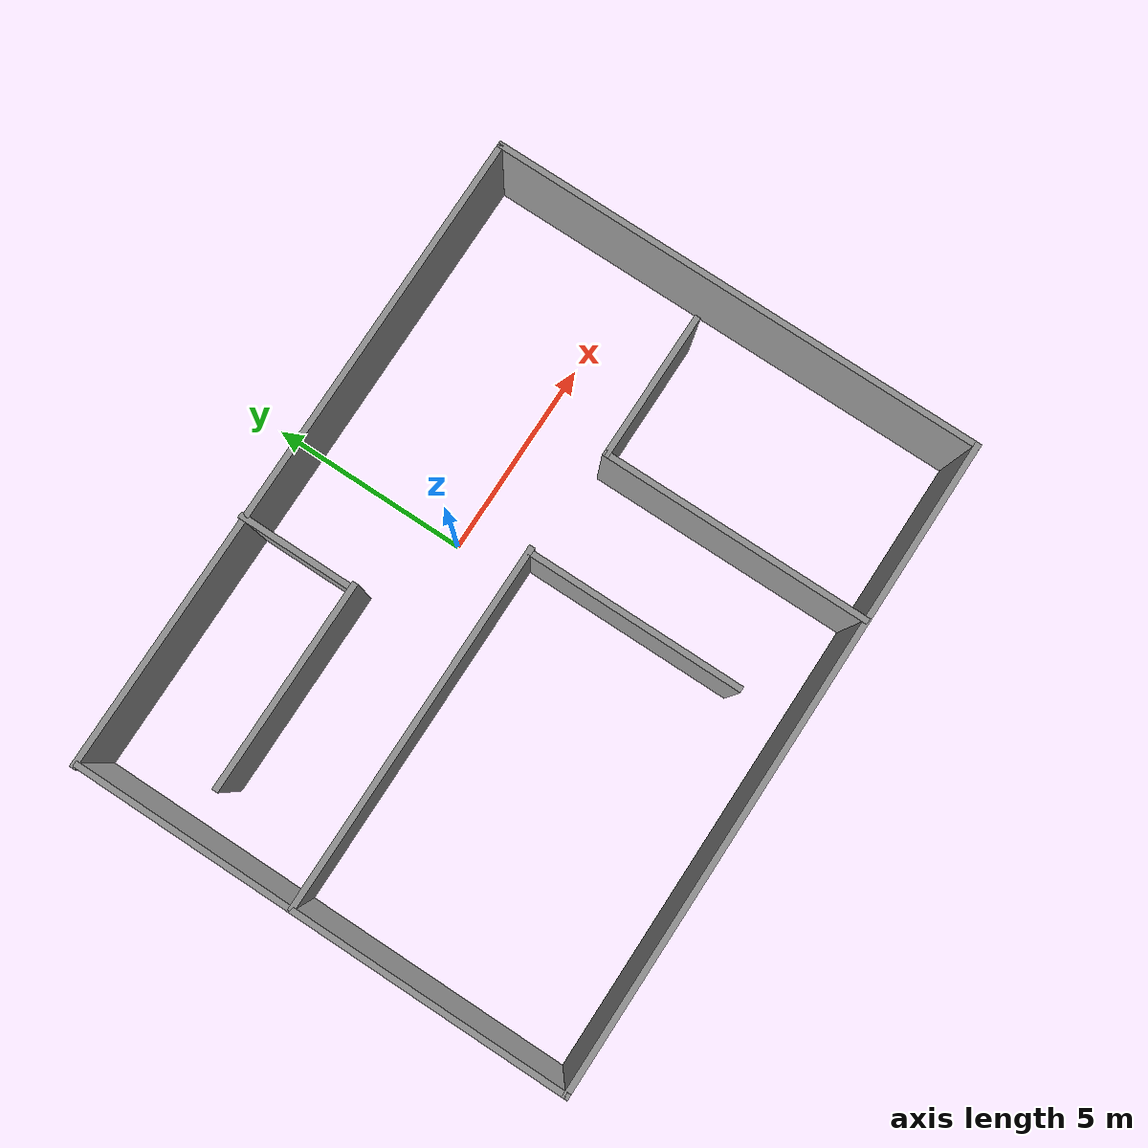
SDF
<?xml version='1.0'?>
<sdf version='1.7'>
  <model name='room'>
    <pose>-0.398501 -2.28961 0 0 -0 0</pose>
    <link name='Wall_12'>
      <collision name='Wall_12_Collision'>
        <geometry>
          <box>
            <size>3 0.15 2.5</size>
          </box>
        </geometry>
        <pose>0 0 1.25 0 -0 0</pose>
      </collision>
      <visual name='Wall_12_Visual'>
        <pose>0 0 1.25 0 -0 0</pose>
        <geometry>
          <box>
            <size>3 0.15 2.5</size>
          </box>
        </geometry>
        <material>
          <script>
            <uri>file://media/materials/scripts/gazebo.material</uri>
            <name>Gazebo/Grey</name>
          </script>
          <ambient>1 1 1 1</ambient>
        </material>
        <meta>
          <layer>0</layer>
        </meta>
      </visual>
      <pose>-1.85328 4.80661 0 0 -0 -1.5708</pose>
    </link>
    <link name='Wall_13'>
      <collision name='Wall_13_Collision'>
        <geometry>
          <box>
            <size>5.30375 0.15 2.5</size>
          </box>
        </geometry>
        <pose>0 0 1.25 0 -0 0</pose>
      </collision>
      <visual name='Wall_13_Visual'>
        <pose>0 0 1.25 0 -0 0</pose>
        <geometry>
          <box>
            <size>5.30375 0.15 2.5</size>
          </box>
        </geometry>
        <material>
          <script>
            <uri>file://media/materials/scripts/gazebo.material</uri>
            <name>Gazebo/Grey</name>
          </script>
          <ambient>1 1 1 1</ambient>
        </material>
        <meta>
          <layer>0</layer>
        </meta>
      </visual>
      <pose>-4.36863 3.38161 0 0 -0 3.14159</pose>
    </link>
    <link name='Wall_15'>
      <collision name='Wall_15_Collision'>
        <geometry>
          <box>
            <size>9.25 0.15 2.5</size>
          </box>
        </geometry>
        <pose>0 0 1.25 0 -0 0</pose>
      </collision>
      <visual name='Wall_15_Visual'>
        <pose>0 0 1.25 0 -0 0</pose>
        <geometry>
          <box>
            <size>9.25 0.15 2.5</size>
          </box>
        </geometry>
        <material>
          <script>
            <uri>file://media/materials/scripts/gazebo.material</uri>
            <name>Gazebo/Grey</name>
          </script>
          <ambient>1 1 1 1</ambient>
        </material>
        <meta>
          <layer>0</layer>
        </meta>
      </visual>
      <pose>-3.59195 0.63632 0 0 -0 0</pose>
    </link>
    <link name='Wall_16'>
      <collision name='Wall_16_Collision'>
        <geometry>
          <box>
            <size>5.5 0.15 2.5</size>
          </box>
        </geometry>
        <pose>0 0 1.25 0 -0 0</pose>
      </collision>
      <visual name='Wall_16_Visual'>
        <pose>0 0 1.25 0 -0 0</pose>
        <geometry>
          <box>
            <size>5.5 0.15 2.5</size>
          </box>
        </geometry>
        <material>
          <script>
            <uri>file://media/materials/scripts/gazebo.material</uri>
            <name>Gazebo/Grey</name>
          </script>
          <ambient>1 1 1 1</ambient>
        </material>
        <meta>
          <layer>0</layer>
        </meta>
      </visual>
      <pose>0.89652 -2.03868 0 0 -0 -1.5708</pose>
    </link>
    <link name='Wall_18'>
      <collision name='Wall_18_Collision'>
        <geometry>
          <box>
            <size>6.75 0.15 2.5</size>
          </box>
        </geometry>
        <pose>0 0 1.25 0 -0 0</pose>
      </collision>
      <visual name='Wall_18_Visual'>
        <pose>0 0 1.25 0 -0 0</pose>
        <geometry>
          <box>
            <size>6.75 0.15 2.5</size>
          </box>
        </geometry>
        <material>
          <script>
            <uri>file://media/materials/scripts/gazebo.material</uri>
            <name>Gazebo/Grey</name>
          </script>
          <ambient>1 1 1 1</ambient>
        </material>
        <meta>
          <layer>0</layer>
        </meta>
      </visual>
      <pose>3.6151 -2.89881 0 0 -0 1.5708</pose>
    </link>
    <link name='Wall_19'>
      <collision name='Wall_19_Collision'>
        <geometry>
          <box>
            <size>3.75 0.15 2.5</size>
          </box>
        </geometry>
        <pose>0 0 1.25 0 -0 0</pose>
      </collision>
      <visual name='Wall_19_Visual'>
        <pose>0 0 1.25 0 -0 0</pose>
        <geometry>
          <box>
            <size>3.75 0.15 2.5</size>
          </box>
        </geometry>
        <material>
          <script>
            <uri>file://media/materials/scripts/gazebo.material</uri>
            <name>Gazebo/Grey</name>
          </script>
          <ambient>1 1 1 1</ambient>
        </material>
        <meta>
          <layer>0</layer>
        </meta>
      </visual>
      <pose>5.4151 0.401188 0 0 -0 0</pose>
    </link>
    <link name='Wall_5'>
      <collision name='Wall_5_Collision'>
        <geometry>
          <box>
            <size>16.5 0.15 2.5</size>
          </box>
        </geometry>
        <pose>0 0 1.25 0 -0 0</pose>
      </collision>
      <visual name='Wall_5_Visual'>
        <pose>0 0 1.25 0 -0 0</pose>
        <geometry>
          <box>
            <size>16.5 0.15 2.5</size>
          </box>
        </geometry>
        <material>
          <script>
            <uri>file://media/materials/scripts/gazebo.material</uri>
            <name>Gazebo/Grey</name>
          </script>
          <ambient>1 1 1 1</ambient>
        </material>
        <meta>
          <layer>0</layer>
        </meta>
      </visual>
      <pose>-0.030845 6.17816 0 0 -0 0</pose>
    </link>
    <link name='Wall_6'>
      <collision name='Wall_6_Collision'>
        <geometry>
          <box>
            <size>12.5596 0.15 2.5</size>
          </box>
        </geometry>
        <pose>0 0 1.25 0 -0 0</pose>
      </collision>
      <visual name='Wall_6_Visual'>
        <pose>0 0 1.25 0 -0 0</pose>
        <geometry>
          <box>
            <size>12.5596 0.15 2.5</size>
          </box>
        </geometry>
        <material>
          <script>
            <uri>file://media/materials/scripts/gazebo.material</uri>
            <name>Gazebo/Grey</name>
          </script>
          <ambient>1 1 1 1</ambient>
        </material>
        <meta>
          <layer>0</layer>
        </meta>
      </visual>
      <pose>8.19217 -0.026646 0 0 -0 -1.57297</pose>
    </link>
    <link name='Wall_7'>
      <collision name='Wall_7_Collision'>
        <geometry>
          <box>
            <size>16.5 0.15 2.5</size>
          </box>
        </geometry>
        <pose>0 0 1.25 0 -0 0</pose>
      </collision>
      <visual name='Wall_7_Visual'>
        <pose>0 0 1.25 0 -0 0</pose>
        <geometry>
          <box>
            <size>16.5 0.15 2.5</size>
          </box>
        </geometry>
        <material>
          <script>
            <uri>file://media/materials/scripts/gazebo.material</uri>
            <name>Gazebo/Grey</name>
          </script>
          <ambient>1 1 1 1</ambient>
        </material>
        <meta>
          <layer>0</layer>
        </meta>
      </visual>
      <pose>0.003664 -6.23145 0 0 -0 3.14159</pose>
    </link>
    <link name='Wall_8'>
      <collision name='Wall_8_Collision'>
        <geometry>
          <box>
            <size>12.5 0.15 2.5</size>
          </box>
        </geometry>
        <pose>0 0 1.25 0 -0 0</pose>
      </collision>
      <visual name='Wall_8_Visual'>
        <pose>0 0 1.25 0 -0 0</pose>
        <geometry>
          <box>
            <size>12.5 0.15 2.5</size>
          </box>
        </geometry>
        <material>
          <script>
            <uri>file://media/materials/scripts/gazebo.material</uri>
            <name>Gazebo/Grey</name>
          </script>
          <ambient>1 1 1 1</ambient>
        </material>
        <meta>
          <layer>0</layer>
        </meta>
      </visual>
      <pose>-8.17134 -0.05645 0 0 -0 1.5708</pose>
    </link>
    <static>1</static>
  </model>
</sdf>
